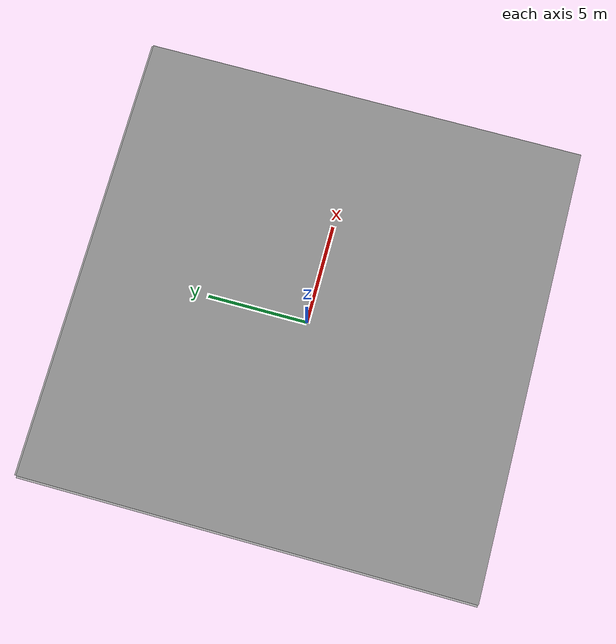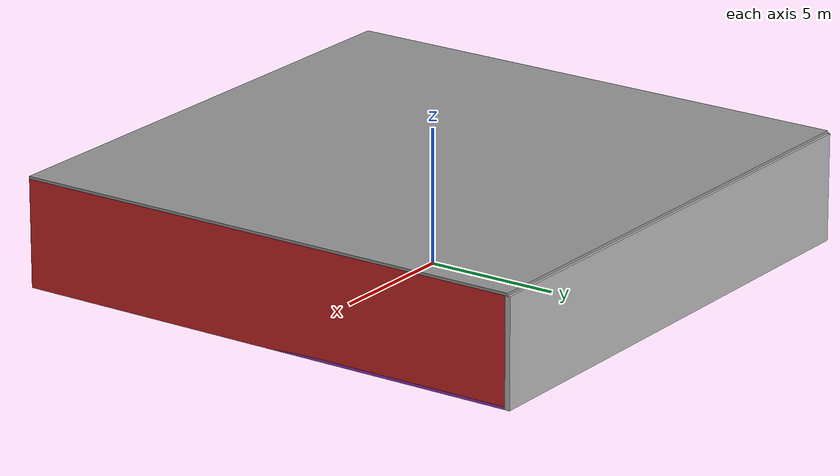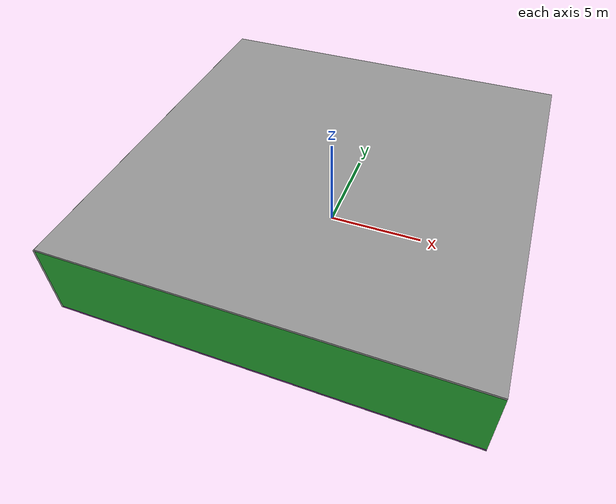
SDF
<sdf version="1.4">
 <world name="default">
  <physics type="ode">
   <max_step_size>0.001</max_step_size>
   <real_time_factor>1</real_time_factor>
   <real_time_update_rate>1000</real_time_update_rate>
   <gravity>0 0 -9.8</gravity>
  </physics>
  <scene><ambient>0.4 0.4 0.4 1</ambient><background>0.7 0.7 0.7 1</background><shadows>1</shadows></scene>
  <model name="Surrounding">
   <static>1</static>
   <link name="Ceiling">
    <collision name="Ceiling_Collision"><geometry><box><size>20 20 0.1</size></box></geometry></collision>
    <visual name="Ceiling_Visual">
     <geometry><box><size>20 20 0.1</size></box></geometry>
     <material>
      <script><uri>file://media/materials/scripts/gazebo.material</uri><name>Gazebo/Grey</name></script>
     </material>
    </visual>
    <pose>0 0 4.05 0 0 0</pose>
   </link>
   <link name="Wall_South">
    <collision name="Wall_South_Collision">
     <geometry><box><size>20 0 4</size></box></geometry>
     <pose>0 0 2 0 -0 0</pose>
    </collision>
    <visual name="Wall_South_Visual">
     <pose>0 0 2 0 -0 0</pose>
     <geometry><box><size>20 0 4</size></box></geometry>
     <material>
      <script><uri>file://media/materials/scripts/gazebo.material</uri><name>Gazebo/GreenGlow</name></script>
     </material>
    </visual>
    <velocity_decay><linear>0</linear><angular>0</angular></velocity_decay>
    <pose>0 -10 0 0 -0 0</pose>
   </link>
   <link name="Wall_East">
    <collision name="Wall_21_Collision">
     <geometry><box><size>20 0 4</size></box></geometry>
     <pose>0 0 2 0 -0 0</pose>
    </collision>
    <visual name="Wall_21_Visual">
     <pose>0 0 2 0 -0 0</pose>
     <geometry><box><size>20 0 4</size></box></geometry>
     <material>
      <script><uri>file://media/materials/scripts/gazebo.material</uri><name>Gazebo/Red</name></script>
     </material>
    </visual>
    <velocity_decay><linear>0</linear><angular>0</angular></velocity_decay>
    <pose>10 0 0 0 -0 1.5708</pose>
   </link>
   <link name="Wall_North">
    <collision name="Wall_22_Collision">
     <geometry><box><size>20 0.2 4</size></box></geometry>
     <pose>0 0 2 0 -0 0</pose>
    </collision>
    <visual name="Wall_22_Visual">
     <pose>0 0 2 0 -0 0</pose>
     <geometry><box><size>20 0.2 4</size></box></geometry>
     <material>
      <script><uri>file://media/materials/scripts/gazebo.material</uri><name>Gazebo/PioneerBody</name></script>
     </material>
    </visual>
    <velocity_decay><linear>0</linear><angular>0</angular></velocity_decay>
    <pose>0 10 0 0 -0 0</pose>
   </link>
   <link name="Wall_West">
    <collision name="Wall_23_Collision">
     <geometry><box><size>20 0.2 4</size></box></geometry>
     <pose>0 0 2 0 -0 0</pose>
    </collision>
    <visual name="Wall_23_Visual">
     <pose>0 0 2 0 -0 0</pose>
     <geometry><box><size>20 0.2 4</size></box></geometry>
     <material>
      <script><uri>file://media/materials/scripts/gazebo.material</uri><name>Gazebo/CloudySky</name></script>
     </material>
    </visual>
    <velocity_decay><linear>0</linear><angular>0</angular></velocity_decay>
    <pose>-10 0 0 0 0 -1.5708</pose>
   </link>
   <link name="Ground_link">
    <collision name="collision">
     <pose>0 0 .05 0 -0 0</pose>
     <geometry><box><size>20 20 0.1</size></box></geometry>
    </collision>
    <visual name="visual">
     <pose>0 0 .05 0 -0 0</pose>
     <geometry><box><size>20 20 0.1</size></box></geometry>
     <material>
      <script><uri>file://media/materials/scripts/gazebo.material</uri><name>Gazebo/PurpleGlow</name></script>
     </material>
    </visual>
   </link>
   <static>1</static>
  </model>
  <spherical_coordinates>
   <surface_model>EARTH_WGS84</surface_model>
   <latitude_deg>0</latitude_deg>
   <longitude_deg>0</longitude_deg>
   <elevation>0</elevation>
   <heading_deg>0</heading_deg>
  </spherical_coordinates>
  <light name="lightball_0" type="diffuse">
   <diffuse>0.8 0.8 0.8 1</diffuse>
   <specular>0.2 0.2 0.2 1</specular>
   <attenuation>
    <range>100</range>
    <constant>0.7</constant>
    <linear>0.01</linear>
    <quadratic>0.001</quadratic>
   </attenuation>
   <direction>-0.5 0.1 -0.9</direction>
   <pose>-8.97170669279 -5.73093542669 1.60398143009 0 0 0</pose>
  </light>
  <light name="lightball_1" type="diffuse">
   <diffuse>0.8 0.8 0.8 1</diffuse>
   <specular>0.2 0.2 0.2 1</specular>
   <attenuation>
    <range>100</range>
    <constant>0.7</constant>
    <linear>0.01</linear>
    <quadratic>0.001</quadratic>
   </attenuation>
   <direction>-0.5 0.1 -0.9</direction>
   <pose>0.551862717156 -6.30616889058 2.97391207561 0 0 0</pose>
  </light>
  <light name="lightball_2" type="diffuse">
   <diffuse>0.8 0.8 0.8 1</diffuse>
   <specular>0.2 0.2 0.2 1</specular>
   <attenuation>
    <range>100</range>
    <constant>0.7</constant>
    <linear>0.01</linear>
    <quadratic>0.001</quadratic>
   </attenuation>
   <direction>-0.5 0.1 -0.9</direction>
   <pose>-9.37050827148 -6.6397643559 1.08099543778 0 0 0</pose>
  </light>
  <light name="lightball_3" type="diffuse">
   <diffuse>0.8 0.8 0.8 1</diffuse>
   <specular>0.2 0.2 0.2 1</specular>
   <attenuation>
    <range>100</range>
    <constant>0.7</constant>
    <linear>0.01</linear>
    <quadratic>0.001</quadratic>
   </attenuation>
   <direction>-0.5 0.1 -0.9</direction>
   <pose>-6.7712134942 -9.71312866782 0.703746930509 0 0 0</pose>
  </light>
  <light name="lightball_4" type="diffuse">
   <diffuse>0.8 0.8 0.8 1</diffuse>
   <specular>0.2 0.2 0.2 1</specular>
   <attenuation>
    <range>100</range>
    <constant>0.7</constant>
    <linear>0.01</linear>
    <quadratic>0.001</quadratic>
   </attenuation>
   <direction>-0.5 0.1 -0.9</direction>
   <pose>-3.12735894223 4.8670809032 2.12077442001 0 0 0</pose>
  </light>
  <light name="lightball_5" type="diffuse">
   <diffuse>0.8 0.8 0.8 1</diffuse>
   <specular>0.2 0.2 0.2 1</specular>
   <attenuation>
    <range>100</range>
    <constant>0.7</constant>
    <linear>0.01</linear>
    <quadratic>0.001</quadratic>
   </attenuation>
   <direction>-0.5 0.1 -0.9</direction>
   <pose>7.92864440904 -6.17979877464 3.54830787127 0 0 0</pose>
  </light>
  <light name="lightball_6" type="diffuse">
   <diffuse>0.8 0.8 0.8 1</diffuse>
   <specular>0.2 0.2 0.2 1</specular>
   <attenuation>
    <range>100</range>
    <constant>0.7</constant>
    <linear>0.01</linear>
    <quadratic>0.001</quadratic>
   </attenuation>
   <direction>-0.5 0.1 -0.9</direction>
   <pose>-9.67645643328 -8.17174416134 1.18007070992 0 0 0</pose>
  </light>
  <light name="lightball_7" type="diffuse">
   <diffuse>0.8 0.8 0.8 1</diffuse>
   <specular>0.2 0.2 0.2 1</specular>
   <attenuation>
    <range>100</range>
    <constant>0.7</constant>
    <linear>0.01</linear>
    <quadratic>0.001</quadratic>
   </attenuation>
   <direction>-0.5 0.1 -0.9</direction>
   <pose>-6.82622570272 0.956402647102 0.53475807328 0 0 0</pose>
  </light>
  <light name="lightball_8" type="diffuse">
   <diffuse>0.8 0.8 0.8 1</diffuse>
   <specular>0.2 0.2 0.2 1</specular>
   <attenuation>
    <range>100</range>
    <constant>0.7</constant>
    <linear>0.01</linear>
    <quadratic>0.001</quadratic>
   </attenuation>
   <direction>-0.5 0.1 -0.9</direction>
   <pose>3.87630044835 0.166822238047 2.7447739784 0 0 0</pose>
  </light>
  <light name="lightball_9" type="diffuse">
   <diffuse>0.8 0.8 0.8 1</diffuse>
   <specular>0.2 0.2 0.2 1</specular>
   <attenuation>
    <range>100</range>
    <constant>0.7</constant>
    <linear>0.01</linear>
    <quadratic>0.001</quadratic>
   </attenuation>
   <direction>-0.5 0.1 -0.9</direction>
   <pose>8.91592268311 5.81353411961 3.05555446445 0 0 0</pose>
  </light>
  <light name="lightball_10" type="diffuse">
   <diffuse>0.8 0.8 0.8 1</diffuse>
   <specular>0.2 0.2 0.2 1</specular>
   <attenuation>
    <range>100</range>
    <constant>0.7</constant>
    <linear>0.01</linear>
    <quadratic>0.001</quadratic>
   </attenuation>
   <direction>-0.5 0.1 -0.9</direction>
   <pose>-0.717111733925 -7.60398362298 1.03098026941 0 0 0</pose>
  </light>
  <light name="lightball_11" type="diffuse">
   <diffuse>0.8 0.8 0.8 1</diffuse>
   <specular>0.2 0.2 0.2 1</specular>
   <attenuation>
    <range>100</range>
    <constant>0.7</constant>
    <linear>0.01</linear>
    <quadratic>0.001</quadratic>
   </attenuation>
   <direction>-0.5 0.1 -0.9</direction>
   <pose>8.02497351439 7.44847769209 1.09803822284 0 0 0</pose>
  </light>
  <light name="lightball_12" type="diffuse">
   <diffuse>0.8 0.8 0.8 1</diffuse>
   <specular>0.2 0.2 0.2 1</specular>
   <attenuation>
    <range>100</range>
    <constant>0.7</constant>
    <linear>0.01</linear>
    <quadratic>0.001</quadratic>
   </attenuation>
   <direction>-0.5 0.1 -0.9</direction>
   <pose>5.37088737978 -3.44062657382 3.42721379953 0 0 0</pose>
  </light>
  <light name="lightball_13" type="diffuse">
   <diffuse>0.8 0.8 0.8 1</diffuse>
   <specular>0.2 0.2 0.2 1</specular>
   <attenuation>
    <range>100</range>
    <constant>0.7</constant>
    <linear>0.01</linear>
    <quadratic>0.001</quadratic>
   </attenuation>
   <direction>-0.5 0.1 -0.9</direction>
   <pose>5.86014004527 6.96007261112 2.27320326211 0 0 0</pose>
  </light>
  <include>
   <uri>model://textured_shapes</uri>
   <pose>-7.21545486537 -4.27977201261 0 0 0 2.29800161821</pose>
  </include>
  <include>
   <uri>model://textured_shapes</uri>
   <pose>-3.58654267016 -4.37058648443 0 0 0 2.91023080274</pose>
  </include>
  <include><uri>model://cabinet</uri><pose>1.21217840524 -1.16781510788 0 0 0 1.29382642209</pose></include>
 </world>
</sdf>

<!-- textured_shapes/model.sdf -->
<sdf version="1.6">
  <model name="textured_shapes">
    <pose>0 0 0.5 0 0 0</pose>
    <link name="box">
      <pose>0 -1.5 0 0 0 0</pose>
      <collision name="collision">
        <geometry>
          <box>
            <size>1 1 1</size>
          </box>
        </geometry>
      </collision>
      <visual name="visual">
        <geometry>
          <box>
            <size>1 1 1</size>
          </box>
        </geometry>
        <material>
          <script>
            <uri>model://../model_source/models/textured_shapes/materials/scripts</uri>
            <uri>model://../model_source/models/textured_shapes/materials/textures</uri>
            <name>TexturedShape/Squares</name>
          </script>
        </material>
      </visual>
    </link>
    <link name="sphere">
      <collision name="collision">
        <geometry>
          <sphere>
            <radius>0.5</radius>
          </sphere>
        </geometry>
      </collision>
      <visual name="visual">
        <geometry>
          <sphere>
            <radius>0.5</radius>
          </sphere>
        </geometry>
        <material>
          <script>
            <uri>model://../model_source/models/textured_shapes/materials/scripts</uri>
            <uri>model://../model_source/models/textured_shapes/materials/textures</uri>
            <name>TexturedShape/Squares</name>
          </script>
        </material>
      </visual>
    </link>
    <link name="cylinder">
      <pose>0 1.5 0 0 0 0</pose>
      <collision name="collision">
        <geometry>
          <cylinder>
            <radius>0.5</radius>
            <length>1</length>
          </cylinder>
        </geometry>
      </collision>
      <visual name="visual">
        <geometry>
          <cylinder>
            <radius>0.5</radius>
            <length>1</length>
          </cylinder>
        </geometry>
        <material>
          <script>
            <uri>model://../model_source/models/textured_shapes/materials/scripts</uri>
            <uri>model://../model_source/models/textured_shapes/materials/textures</uri>
            <name>TexturedShape/Squares</name>
          </script>
        </material>
      </visual>
    </link>
  </model>
</sdf>

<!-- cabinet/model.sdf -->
<sdf version="1.5">
  <model name="cabinet">
    <static>true</static>
    <link name="cabinet_bottom_plate">
      <inertial>
        <pose>0 0 -1 0 0 0</pose>
        <inertia>
          <ixx>2.050000</ixx>
          <ixy>0</ixy>
          <ixz>0</ixz>
          <iyy>2.050000</iyy>
          <iyz>0</iyz>
          <izz>2.050000</izz>
        </inertia>
        <mass>25.000000</mass>
      </inertial>
      <collision name="cabinet_bottom_plate_geom">
        <pose>0 0 0.010000 0 0 0</pose>
        <geometry>
          <box>
            <size>0.450000 0.450000 0.020000</size>
          </box>
        </geometry>
      </collision>
      <visual name="cabinet_bottom_plate_geom_visual">
        <pose>0 0 0.010000 0 0 0</pose>
        <geometry>
          <box>
            <size>0.450000 0.450000 0.020000</size>
          </box>
        </geometry>
        <material>
          <script>
            <uri>model://media/materials/scripts/gazebo.material</uri>
            <name>Gazebo/Wood</name>
          </script>
        </material>
      </visual>
      <collision name="cabinet_bottom_plate_geom_cabinet_back_plate">
        <pose>0.235000 0 0.510000 0 0 0</pose>
        <geometry>
          <box>
            <size>0.020000 0.450000 1.020000</size>
          </box>
        </geometry>
      </collision>
      <visual name="cabinet_bottom_plate_geom_cabinet_back_plate_visual">
        <pose>0.235000 0 0.510000 0 0 0</pose>
        <geometry>
          <box>
            <size>0.020000 0.450000 1.020000</size>
          </box>
        </geometry>
        <material>
          <script>
            <uri>model://media/materials/scripts/gazebo.material</uri>
            <name>Gazebo/Wood</name>
          </script>
        </material>
      </visual>
      <collision name="cabinet_bottom_plate_geom_cabinet_left_plate">
        <pose>0 0.235000 0.510000 0 0 0</pose>
        <geometry>
          <box>
            <size>0.450000 0.020000 1.020000</size>
          </box>
        </geometry>
      </collision>
      <visual name="cabinet_bottom_plate_geom_cabinet_left_plate_visual">
        <pose>0 0.235000 0.510000 0 0 0</pose>
        <geometry>
          <box>
            <size>0.450000 0.020000 1.020000</size>
          </box>
        </geometry>
        <material>
          <script>
            <uri>model://media/materials/scripts/gazebo.material</uri>
            <name>Gazebo/Wood</name>
          </script>
        </material>
      </visual>
      <collision name="cabinet_bottom_plate_geom_cabinet_middle_plate">
        <pose>0 0 0.510000 0 0 0</pose>
        <geometry>
          <box>
            <size>0.450000 0.450000 0.020000</size>
          </box>
        </geometry>
      </collision>
      <visual name="cabinet_bottom_plate_geom_cabinet_middle_plate_visual">
        <pose>0 0 0.510000 0 0 0</pose>
        <geometry>
          <box>
            <size>0.450000 0.450000 0.020000</size>
          </box>
        </geometry>
        <material>
          <script>
            <uri>model://media/materials/scripts/gazebo.material</uri>
            <name>Gazebo/Wood</name>
          </script>
        </material>
      </visual>
      <collision name="cabinet_bottom_plate_geom_cabinet_right_plate">
        <pose>0 -0.235000 0.510000 0 0 0</pose>
        <geometry>
          <box>
            <size>0.450000 0.020000 1.020000</size>
          </box>
        </geometry>
      </collision>
      <visual name="cabinet_bottom_plate_geom_cabinet_right_plate_visual">
        <pose>0 -0.235000 0.510000 0 0 0</pose>
        <geometry>
          <box>
            <size>0.450000 0.020000 1.020000</size>
          </box>
        </geometry>
        <material>
          <script>
            <uri>model://media/materials/scripts/gazebo.material</uri>
            <name>Gazebo/Wood</name>
          </script>
        </material>
      </visual>
      <collision name="cabinet_bottom_plate_geom_cabinet_top_plate">
        <pose>0 0 1.010000 0 0 0</pose>
        <geometry>
          <box>
            <size>0.450000 0.450000 0.020000</size>
          </box>
        </geometry>
      </collision>
      <visual name="cabinet_bottom_plate_geom_cabinet_top_plate_visual">
        <pose>0 0 1.010000 0 0 0</pose>
        <geometry>
          <box>
            <size>0.450000 0.450000 0.020000</size>
          </box>
        </geometry>
        <material>
          <script>
            <uri>model://media/materials/scripts/gazebo.material</uri>
            <name>Gazebo/Wood</name>
          </script>
        </material>
      </visual>
    </link>
  </model>
</sdf>
